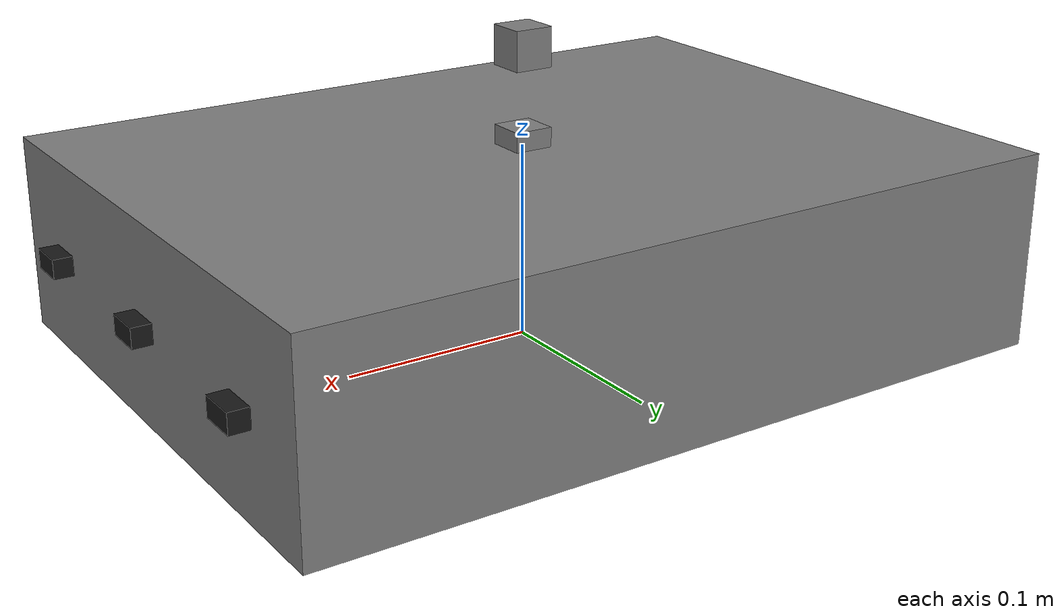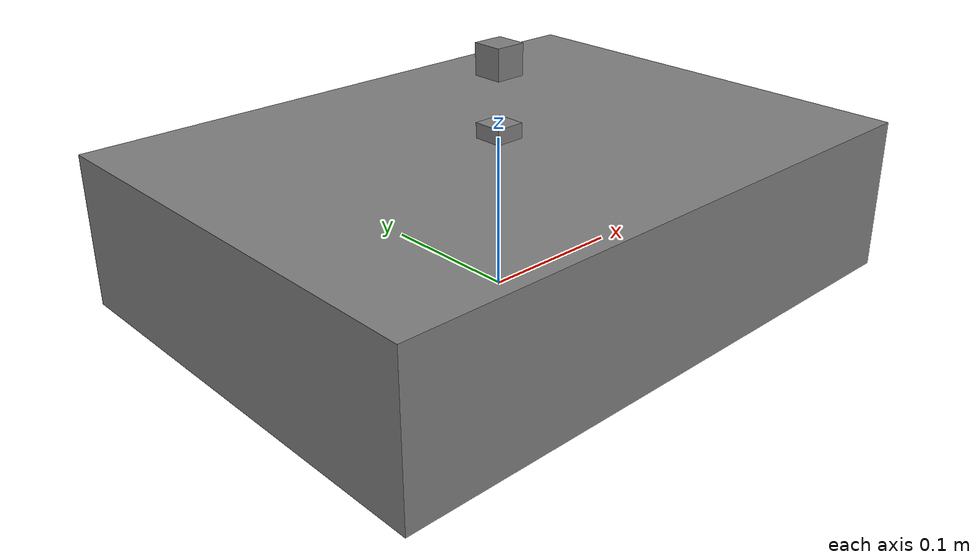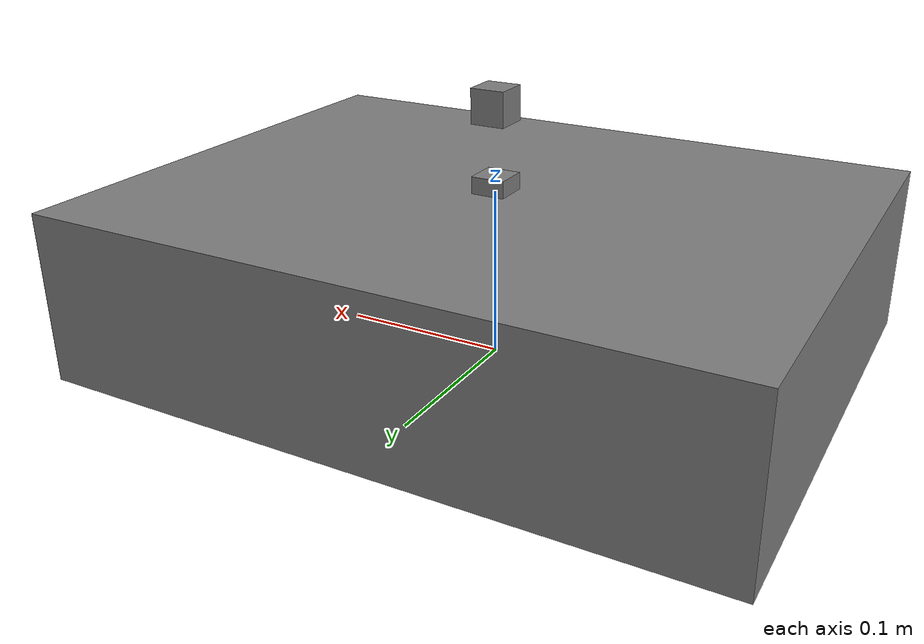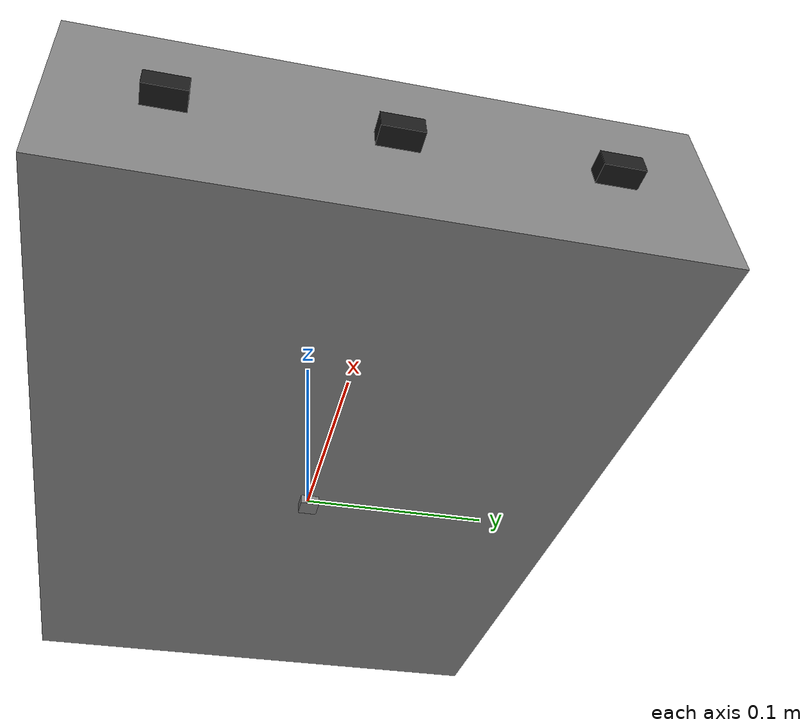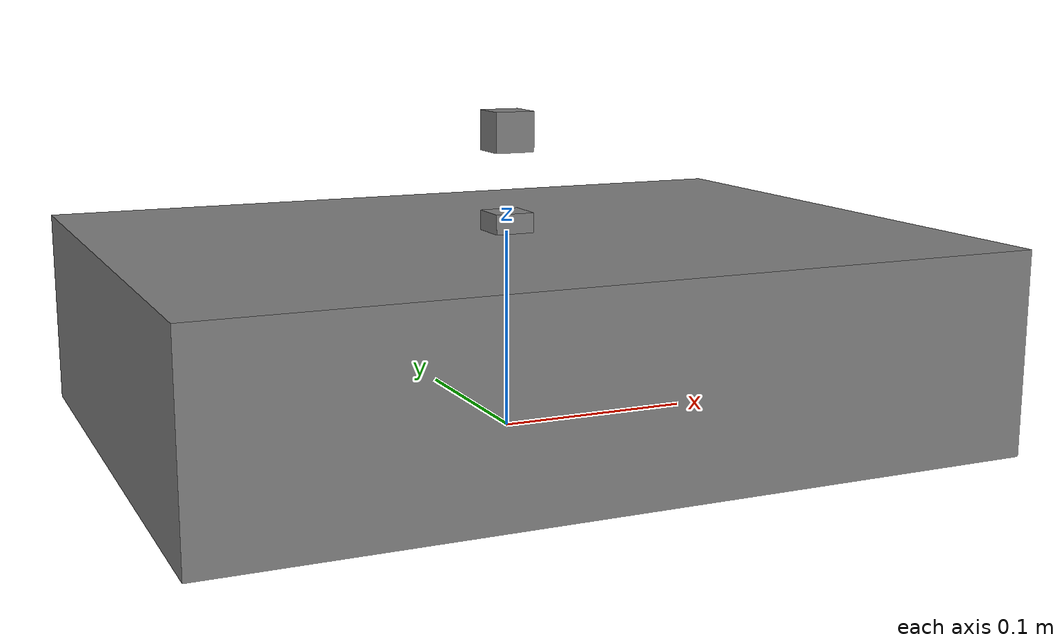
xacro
<?xml version="1.0"?>
<robot name="mecanum_robot" xmlns:xacro="http://ros.org/wiki/xacro">

  <!-- Geometria -->
  <xacro:property name="wheel_radius" value="0.0235"/>   <!-- Raggio ruota [m] -->
  <xacro:property name="L" value="0.07"/>              <!-- Mezzo passo longitudinale [m] -->
  <xacro:property name="W" value="0.07"/>              <!-- Mezzo passo trasversale [m] -->

  <!-- Hardware -->
  <xacro:property name="mock" value="false"/>          <!-- true = simulazione, false = hardware reale -->
  <xacro:property name="accel_limit" value="12.0"/>     <!--Limite accelerazione [rad/s²] -->
  <xacro:property name="ticks_per_rev" value="12"/>  <!-- Tick encoder per giro motore -->
  <xacro:property name="gear_ratio" value="90.0"/>     <!-- Rapporto di riduzione -->

  <xacro:property name="max_vx" value="0.33"/>
  <xacro:property name="max_vy" value="0.33"/>
  <xacro:property name="max_wz" value="4.7"/>

  <!-- Inversione direzione ruote -->
  <xacro:property name="invert_fl" value="1"/>
  <xacro:property name="invert_fr" value="1"/>
  <xacro:property name="invert_rl" value="1"/>
  <xacro:property name="invert_rr" value="1"/>

  <!-- =========================
       📌 LINK DI BASE
       ========================= -->
  <!-- Link radice fittizio senza inerzia -->
  <link name="base_footprint"/>

  <!-- Giunto fisso tra base_footprint e base_link -->
  <joint name="base_footprint_to_base_link" type="fixed">
    <parent link="base_footprint"/>
    <child link="base_link"/>
    <origin xyz="0 0 0" rpy="0 0 0"/>
  </joint>

  <!-- Link base del robot -->
  <link name="base_link">
    <visual>
      <geometry>
        <box size="0.4 0.3 0.1"/>
      </geometry>
      <origin xyz="0 0 0.05" rpy="0 0 0"/>
      <material name="gray">
        <color rgba="0.5 0.5 0.5 1.0"/>
      </material>
    </visual>
    <inertial>
      <origin xyz="0 0 0.05" rpy="0 0 0"/>
      <mass value="10.0"/>
      <inertia ixx="0.2" ixy="0" ixz="0" iyy="0.2" iyz="0" izz="0.2"/>
    </inertial>
  </link>

  <!-- =========================
       📌 MACRO RUOTA
       ========================= -->
  <xacro:macro name="wheel" params="name x y">
    <link name="${name}_link">
      <visual>
        <geometry>
          <cylinder radius="${wheel_radius}" length="0.05"/>
        </geometry>
        <origin xyz="0 0 0" rpy="0 0 1.5708"/>
        <material name="black">
          <color rgba="0.1 0.1 0.1 1.0"/>
        </material>
      </visual>
    </link>
    <joint name="${name}_joint" type="continuous">
      <parent link="base_link"/>
      <child link="${name}_link"/>
      <origin xyz="${x} ${y} 0.05" rpy="0 0 0"/>
      <axis xyz="0 1 0"/>
    </joint>
  </xacro:macro>

  <!-- =========================
       📌 QUATTRO RUOTE MECANUM
       ========================= -->
  <xacro:wheel name="front_left_wheel"  x="${L}"  y="${W}"/>
  <xacro:wheel name="front_right_wheel" x="${L}"  y="${-W}"/>
  <xacro:wheel name="rear_left_wheel"   x="${-L}" y="${W}"/>
  <xacro:wheel name="rear_right_wheel"  x="${-L}" y="${-W}"/>

  <!-- =========================
       📌 IMU (solo visualizzazione)
       ========================= -->
  <link name="imu_link">
    <visual>
      <origin xyz="0 0 0" rpy="0 0 0"/>
      <geometry>
        <box size="0.02 0.02 0.02"/> <!-- Cubo di 2 cm -->
      </geometry>
      <material name="gray">
        <color rgba="0.5 0.5 0.5 1.0"/>
      </material>
    </visual>
    <inertial>
      <origin xyz="0 0 0" rpy="0 0 0"/>
      <mass value="0.01"/>
      <inertia ixx="0.00001" ixy="0.0" ixz="0.0"
               iyy="0.00001" iyz="0.0" izz="0.00001"/>
    </inertial>
  </link>

  <!-- Giunto fisso tra base_link e imu_link -->
  <joint name="imu_joint" type="fixed">
    <parent link="base_link"/>
    <child link="imu_link"/>
    <origin xyz="0.0 0.0 0.1" rpy="0 0 0"/>
  </joint>

  <!-- Sensore IR frontale sinistro -->
  <link name="ir_front_left_link">
    <!-- Visualizzazione del sensore come un piccolo cubo nero -->
    <visual>
      <geometry>
        <box size="0.02 0.02 0.01"/> <!-- Dimensioni del sensore -->
      </geometry>
      <material name="black"/> <!-- Colore del sensore -->
    </visual>
  </link>

  <!-- Joint fisso tra il sensore e il corpo del robot -->
  <joint name="ir_front_left_joint" type="fixed">
    <parent link="base_link"/> <!-- Collegato al corpo principale -->
    <child link="ir_front_left_link"/> <!-- Il sensore è il figlio -->
    <origin xyz="0.2 0.1 0.05" rpy="0 0 0"/> <!-- Posizione e orientamento -->
  </joint>

  <!-- Sensore IR frontale centrale -->
  <link name="ir_front_center_link">
    <visual>
      <geometry>
        <box size="0.02 0.02 0.01"/>
      </geometry>
      <material name="black"/>
    </visual>
  </link>

  <joint name="ir_front_center_joint" type="fixed">
    <parent link="base_link"/>
    <child link="ir_front_center_link"/>
    <origin xyz="0.2 0.0 0.05" rpy="0 0 0"/>
  </joint>

  <!-- Sensore IR frontale destro -->
  <link name="ir_front_right_link">
    <visual>
      <geometry>
        <box size="0.02 0.02 0.01"/>
      </geometry>
      <material name="black"/>
    </visual>
  </link>

  <joint name="ir_front_right_joint" type="fixed">
    <parent link="base_link"/>
    <child link="ir_front_right_link"/>
    <origin xyz="0.2 -0.1 0.05" rpy="0 0 0"/>
  </joint>

  <!-- Servo Pan -->
  <joint name="servo_pan_joint" type="revolute">
    <parent link="base_link"/>
    <child link="servo_pan_link"/>
    <origin xyz="0 0 0.1" rpy="0 0 0"/>
    <axis xyz="0 0 1"/>
    <limit effort="1.0" velocity="1.0" lower="-1.57" upper="1.57"/>
  </joint>

  <link name="servo_pan_link">
    <visual>
      <geometry>
        <box size="0.02 0.02 0.02"/>
      </geometry>
      <material name="gray"/>
    </visual>
  </link>

  <!-- Servo Tilt -->
  <joint name="servo_tilt_joint" type="revolute">
    <parent link="servo_pan_link"/>
    <child link="servo_tilt_link"/>
    <origin xyz="0 0 0.05" rpy="0 0 0"/>
    <axis xyz="1 0 0"/>
    <limit effort="1.0" velocity="1.0" lower="-1.57" upper="1.57"/>
  </joint>

  <link name="servo_tilt_link">
    <visual>
      <geometry>
        <box size="0.02 0.02 0.02"/>
      </geometry>
      <material name="gray"/>
    </visual>
  </link>

  <!-- 🔄 Transmission per servo_pan_joint -->
  <transmission name="servo_pan_trans">
    <type>transmission_interface/SimpleTransmission</type>
    <joint name="servo_pan_joint">
      <hardwareInterface>hardware_interface/PositionStateInterface</hardwareInterface>
    </joint>
    <actuator name="servo_pan_motor">
      <hardwareInterface>hardware_interface/PositionStateInterface</hardwareInterface>
      <mechanicalReduction>1</mechanicalReduction>
    </actuator>
  </transmission>

  <!-- 🔄 Transmission per servo_tilt_joint -->
  <transmission name="servo_tilt_trans">
    <type>transmission_interface/SimpleTransmission</type>
    <joint name="servo_tilt_joint">
      <hardwareInterface>hardware_interface/PositionStateInterface</hardwareInterface>
    </joint>
    <actuator name="servo_tilt_motor">
      <hardwareInterface>hardware_interface/PositionStateInterface</hardwareInterface>
      <mechanicalReduction>1</mechanicalReduction>
    </actuator>
  </transmission>

  <!-- Link fittizio per la batteria -->
  <link name="battery_link">
    <visual>
      <geometry>
        <box size="0.01 0.01 0.01"/>
      </geometry>
      <material name="gray"/>
    </visual>
  </link>

  <!-- Joint fittizio per la batteria -->
  <joint name="battery_state" type="fixed">
    <parent link="base_link"/> <!-- o un altro link esistente del tuo robot -->
    <child link="battery_link"/>
  </joint>

  <!-- =========================
       📌 ROS2_CONTROL: HARDWARE MECANUM
       ========================= -->
  <ros2_control name="MecanumSystem" type="system">
    <hardware>
      <!-- Nome del plugin hardware (corrisponde al file plugin.xml) -->
      <plugin>mecanum_hardware/MecanumSystem</plugin>

      <!-- Parametri comuni -->
      <param name="wheel_radius">${wheel_radius}</param>
      <param name="L">${L}</param>
      <param name="W">${W}</param>
      <param name="mock">${mock}</param>
      <param name="accel_limit">${accel_limit}</param>

      <!-- Parametri hardware -->
      <param name="ticks_per_rev">${ticks_per_rev}</param>
      <param name="gear_ratio">${gear_ratio}</param>
      <param name="invert_fl">${invert_fl}</param>
      <param name="invert_fr">${invert_fr}</param>
      <param name="invert_rl">${invert_rl}</param>
      <param name="invert_rr">${invert_rr}</param>

      <!-- Parametri seriale -->
      <param name="serial_port">/dev/ttyAMA0</param>
      <param name="baudrate">1000000</param>

      <param name="use_battery">true</param>
    </hardware>

    <!-- Interfacce per ciascun giunto -->
    <joint name="front_left_wheel_joint">
      <state_interface name="position"/>
      <state_interface name="velocity"/>
      <command_interface name="velocity"/>
    </joint>
    <joint name="front_right_wheel_joint">
      <state_interface name="position"/>
      <state_interface name="velocity"/>
      <command_interface name="velocity"/>
    </joint>
    <joint name="rear_left_wheel_joint">
      <state_interface name="position"/>
      <state_interface name="velocity"/>
      <command_interface name="velocity"/>
    </joint>
    <joint name="rear_right_wheel_joint">
      <state_interface name="position"/>
      <state_interface name="velocity"/>
      <command_interface name="velocity"/>
    </joint>

    <sensor name="battery_state">
      <state_interface name="voltage"/>
      <state_interface name="percentage"/>
    </sensor>

    <!-- State interface per E-STOP -->
    <sensor name="estop_sensor">
      <state_interface name="estop_active"/>
    </sensor>
  </ros2_control>

</robot>
